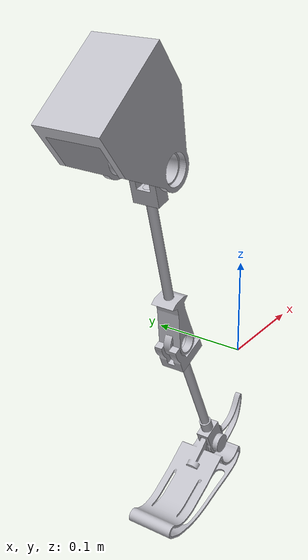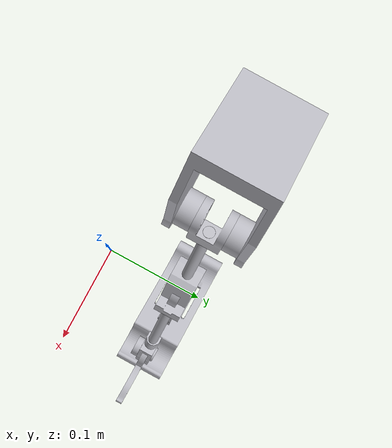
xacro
<?xml version="1.0" ?>
<robot name="09.06.26_5pm" xmlns:xacro="http://www.ros.org/wiki/xacro">

<xacro:include filename="./materials.xacro" />
<xacro:include filename="./09.06.26_5pm.trans" />
<xacro:include filename="./09.06.26_5pm.gazebo" />
<link name="base_link">
  <inertial>
    <origin xyz="-0.10238687658247528 0.07899999999999985 0.2672490830517451" rpy="0 0 0"/>
    <mass value="0.6541304380247976"/>
    <inertia ixx="0.001161" iyy="0.001238" izz="0.00114" ixy="-0.0" iyz="0.0" ixz="3.8e-05"/>
  </inertial>
  <visual>
    <origin xyz="0 0 0" rpy="0 0 0"/>
    <geometry>
      <mesh filename="file:///home/krishna/bumperbot_ws/src/09.06.26_5pm_description/meshes/base_link.stl" scale="0.001 0.001 0.001"/>
    </geometry>
    <material name="silver"/>
  </visual>
  <collision>
    <origin xyz="0 0 0" rpy="0 0 0"/>
    <geometry>
      <mesh filename="file:///home/krishna/bumperbot_ws/src/09.06.26_5pm_description/meshes/base_link.stl" scale="0.001 0.001 0.001"/>
    </geometry>
  </collision>
</link>

<link name="actuator_1_v1_1">
  <inertial>
    <origin xyz="-1.1412289121354169e-07 0.007250499999999868 -3.278807773898773e-07" rpy="0 0 0"/>
    <mass value="0.025332587754889873"/>
    <inertia ixx="4e-06" iyy="6e-06" izz="4e-06" ixy="-0.0" iyz="0.0" ixz="-0.0"/>
  </inertial>
  <visual>
    <origin xyz="0.05457 -0.048912 -0.204524" rpy="0 0 0"/>
    <geometry>
      <mesh filename="file:///home/krishna/bumperbot_ws/src/09.06.26_5pm_description/meshes/actuator_1_v1_1.stl" scale="0.001 0.001 0.001"/>
    </geometry>
    <material name="silver"/>
  </visual>
  <collision>
    <origin xyz="0.05457 -0.048912 -0.204524" rpy="0 0 0"/>
    <geometry>
      <mesh filename="file:///home/krishna/bumperbot_ws/src/09.06.26_5pm_description/meshes/actuator_1_v1_1.stl" scale="0.001 0.001 0.001"/>
    </geometry>
  </collision>
</link>

<link name="actuator_2_v1_1">
  <inertial>
    <origin xyz="-1.1412289123435837e-07 -0.007249500000000034 -3.278807774176329e-07" rpy="0 0 0"/>
    <mass value="0.025332587754889873"/>
    <inertia ixx="4e-06" iyy="6e-06" izz="4e-06" ixy="-0.0" iyz="-0.0" ixz="0.0"/>
  </inertial>
  <visual>
    <origin xyz="0.05457 -0.109087 -0.204524" rpy="0 0 0"/>
    <geometry>
      <mesh filename="file:///home/krishna/bumperbot_ws/src/09.06.26_5pm_description/meshes/actuator_2_v1_1.stl" scale="0.001 0.001 0.001"/>
    </geometry>
    <material name="silver"/>
  </visual>
  <collision>
    <origin xyz="0.05457 -0.109087 -0.204524" rpy="0 0 0"/>
    <geometry>
      <mesh filename="file:///home/krishna/bumperbot_ws/src/09.06.26_5pm_description/meshes/actuator_2_v1_1.stl" scale="0.001 0.001 0.001"/>
    </geometry>
  </collision>
</link>

<link name="hip_clevis_v1_1">
  <inertial>
    <origin xyz="0.007334968870516073 -0.015587999989115475 -0.02211352849978912" rpy="0 0 0"/>
    <mass value="0.034362694114534874"/>
    <inertia ixx="1.2e-05" iyy="1e-05" izz="7e-06" ixy="-0.0" iyz="0.0" ixz="2e-06"/>
  </inertial>
  <visual>
    <origin xyz="0.05457 -0.094588 -0.204524" rpy="0 0 0"/>
    <geometry>
      <mesh filename="file:///home/krishna/bumperbot_ws/src/09.06.26_5pm_description/meshes/hip_clevis_v1_1.stl" scale="0.001 0.001 0.001"/>
    </geometry>
    <material name="silver"/>
  </visual>
  <collision>
    <origin xyz="0.05457 -0.094588 -0.204524" rpy="0 0 0"/>
    <geometry>
      <mesh filename="file:///home/krishna/bumperbot_ws/src/09.06.26_5pm_description/meshes/hip_clevis_v1_1.stl" scale="0.001 0.001 0.001"/>
    </geometry>
  </collision>
</link>

<link name="leg_1_rod_v1_1">
  <inertial>
    <origin xyz="0.042767405156213176 -8.326672684688674e-17 -0.12893123144354507" rpy="0 0 0"/>
    <mass value="0.05716103390617287"/>
    <inertia ixx="0.00015" iyy="0.000165" izz="2.1e-05" ixy="-0.0" iyz="0.0" ixz="4.8e-05"/>
  </inertial>
  <visual>
    <origin xyz="0.046353 -0.079 -0.179751" rpy="0 0 0"/>
    <geometry>
      <mesh filename="file:///home/krishna/bumperbot_ws/src/09.06.26_5pm_description/meshes/leg_1_rod_v1_1.stl" scale="0.001 0.001 0.001"/>
    </geometry>
    <material name="silver"/>
  </visual>
  <collision>
    <origin xyz="0.046353 -0.079 -0.179751" rpy="0 0 0"/>
    <geometry>
      <mesh filename="file:///home/krishna/bumperbot_ws/src/09.06.26_5pm_description/meshes/leg_1_rod_v1_1.stl" scale="0.001 0.001 0.001"/>
    </geometry>
  </collision>
</link>

<link name="knee_bearing_holder_v1_1">
  <inertial>
    <origin xyz="0.002117645657388343 0.004713000000010223 -0.01496802981633905" rpy="0 0 0"/>
    <mass value="0.052526088047730436"/>
    <inertia ixx="1e-05" iyy="1.6e-05" izz="1.3e-05" ixy="-0.0" iyz="0.0" ixz="1e-06"/>
  </inertial>
  <visual>
    <origin xyz="-0.015786 -0.074287 0.007579" rpy="0 0 0"/>
    <geometry>
      <mesh filename="file:///home/krishna/bumperbot_ws/src/09.06.26_5pm_description/meshes/knee_bearing_holder_v1_1.stl" scale="0.001 0.001 0.001"/>
    </geometry>
    <material name="silver"/>
  </visual>
  <collision>
    <origin xyz="-0.015786 -0.074287 0.007579" rpy="0 0 0"/>
    <geometry>
      <mesh filename="file:///home/krishna/bumperbot_ws/src/09.06.26_5pm_description/meshes/knee_bearing_holder_v1_1.stl" scale="0.001 0.001 0.001"/>
    </geometry>
  </collision>
</link>

<link name="leg_2_rod_v1_1">
  <inertial>
    <origin xyz="0.0259873322679865 -2.7755575615628914e-17 -0.06768226109860206" rpy="0 0 0"/>
    <mass value="0.019259830127920444"/>
    <inertia ixx="3e-05" iyy="3.4e-05" izz="5e-06" ixy="-0.0" iyz="0.0" ixz="1.1e-05"/>
  </inertial>
  <visual>
    <origin xyz="-0.023177 -0.079 0.026773" rpy="0 0 0"/>
    <geometry>
      <mesh filename="file:///home/krishna/bumperbot_ws/src/09.06.26_5pm_description/meshes/leg_2_rod_v1_1.stl" scale="0.001 0.001 0.001"/>
    </geometry>
    <material name="silver"/>
  </visual>
  <collision>
    <origin xyz="-0.023177 -0.079 0.026773" rpy="0 0 0"/>
    <geometry>
      <mesh filename="file:///home/krishna/bumperbot_ws/src/09.06.26_5pm_description/meshes/leg_2_rod_v1_1.stl" scale="0.001 0.001 0.001"/>
    </geometry>
  </collision>
</link>

<link name="ankle_bracelet_v1_1">
  <inertial>
    <origin xyz="0.005670380472938011 -6.770972671432673e-14 -0.014767385594795734" rpy="0 0 0"/>
    <mass value="0.02471712296263406"/>
    <inertia ixx="5e-06" iyy="6e-06" izz="3e-06" ixy="-0.0" iyz="0.0" ixz="1e-06"/>
  </inertial>
  <visual>
    <origin xyz="-0.075152 -0.079 0.162138" rpy="0 0 0"/>
    <geometry>
      <mesh filename="file:///home/krishna/bumperbot_ws/src/09.06.26_5pm_description/meshes/ankle_bracelet_v1_1.stl" scale="0.001 0.001 0.001"/>
    </geometry>
    <material name="silver"/>
  </visual>
  <collision>
    <origin xyz="-0.075152 -0.079 0.162138" rpy="0 0 0"/>
    <geometry>
      <mesh filename="file:///home/krishna/bumperbot_ws/src/09.06.26_5pm_description/meshes/ankle_bracelet_v1_1.stl" scale="0.001 0.001 0.001"/>
    </geometry>
  </collision>
</link>

<link name="ankle_clevis_v1_1">
  <inertial>
    <origin xyz="0.14821410874760405 -0.09772449238578708 0.005518689044686387" rpy="0 0 0"/>
    <mass value="0.02037716964359355"/>
    <inertia ixx="2e-06" iyy="1e-06" izz="2e-06" ixy="0.0" iyz="-0.0" ixz="0.0"/>
  </inertial>
  <visual>
    <origin xyz="0.062472 -0.172475 0.195237" rpy="0 0 0"/>
    <geometry>
      <mesh filename="file:///home/krishna/bumperbot_ws/src/09.06.26_5pm_description/meshes/ankle_clevis_v1_1.stl" scale="0.001 0.001 0.001"/>
    </geometry>
    <material name="silver"/>
  </visual>
  <collision>
    <origin xyz="0.062472 -0.172475 0.195237" rpy="0 0 0"/>
    <geometry>
      <mesh filename="file:///home/krishna/bumperbot_ws/src/09.06.26_5pm_description/meshes/ankle_clevis_v1_1.stl" scale="0.001 0.001 0.001"/>
    </geometry>
  </collision>
</link>

<link name="knee_bearing_v1_1">
  <inertial>
    <origin xyz="4.748916804364969e-05 -0.004711999999999994 -0.00018823234039732142" rpy="0 0 0"/>
    <mass value="0.022749323058745264"/>
    <inertia ixx="2e-06" iyy="4e-06" izz="2e-06" ixy="-0.0" iyz="0.0" ixz="-0.0"/>
  </inertial>
  <visual>
    <origin xyz="-0.015786 -0.083712 0.007579" rpy="0 0 0"/>
    <geometry>
      <mesh filename="file:///home/krishna/bumperbot_ws/src/09.06.26_5pm_description/meshes/knee_bearing_v1_1.stl" scale="0.001 0.001 0.001"/>
    </geometry>
    <material name="silver"/>
  </visual>
  <collision>
    <origin xyz="-0.015786 -0.083712 0.007579" rpy="0 0 0"/>
    <geometry>
      <mesh filename="file:///home/krishna/bumperbot_ws/src/09.06.26_5pm_description/meshes/knee_bearing_v1_1.stl" scale="0.001 0.001 0.001"/>
    </geometry>
  </collision>
</link>

<link name="ankle_bearing_v1_1">
  <inertial>
    <origin xyz="0.14821410874711993 0.22977499999999998 0.005518689044871766" rpy="0 0 0"/>
    <mass value="0.04520418311639939"/>
    <inertia ixx="5e-06" iyy="9e-06" izz="5e-06" ixy="0.0" iyz="0.0" ixz="-0.0"/>
  </inertial>
  <visual>
    <origin xyz="0.062472 0.150775 0.195237" rpy="0 0 0"/>
    <geometry>
      <mesh filename="file:///home/krishna/bumperbot_ws/src/09.06.26_5pm_description/meshes/ankle_bearing_v1_1.stl" scale="0.001 0.001 0.001"/>
    </geometry>
    <material name="silver"/>
  </visual>
  <collision>
    <origin xyz="0.062472 0.150775 0.195237" rpy="0 0 0"/>
    <geometry>
      <mesh filename="file:///home/krishna/bumperbot_ws/src/09.06.26_5pm_description/meshes/ankle_bearing_v1_1.stl" scale="0.001 0.001 0.001"/>
    </geometry>
  </collision>
</link>

<link name="leg_stack_v1_1">
  <inertial>
    <origin xyz="-0.0415776889338746 0.0036256159342244326 -0.03833863391779391" rpy="0 0 0"/>
    <mass value="0.16228632664383524"/>
    <inertia ixx="0.00015" iyy="0.000512" izz="0.00044" ixy="0.0" iyz="0.0" ixz="-0.000172"/>
  </inertial>
  <visual>
    <origin xyz="-0.085742 -0.075375 0.189718" rpy="0 0 0"/>
    <geometry>
      <mesh filename="file:///home/krishna/bumperbot_ws/src/09.06.26_5pm_description/meshes/leg_stack_v1_1.stl" scale="0.001 0.001 0.001"/>
    </geometry>
    <material name="silver"/>
  </visual>
  <collision>
    <origin xyz="-0.085742 -0.075375 0.189718" rpy="0 0 0"/>
    <geometry>
      <mesh filename="file:///home/krishna/bumperbot_ws/src/09.06.26_5pm_description/meshes/leg_stack_v1_1.stl" scale="0.001 0.001 0.001"/>
    </geometry>
  </collision>
</link>

<joint name="Rigid 11" type="fixed">
  <origin xyz="-0.05457 0.048912 0.204524" rpy="0 0 0"/>
  <parent link="base_link"/>
  <child link="actuator_1_v1_1"/>
</joint>

<joint name="Rigid 12" type="fixed">
  <origin xyz="-0.05457 0.109087 0.204524" rpy="0 0 0"/>
  <parent link="base_link"/>
  <child link="actuator_2_v1_1"/>
</joint>

<joint name="Hip" type="revolute">
  <origin xyz="0.0 -0.014499 0.0" rpy="0 0 0"/>
  <parent link="actuator_2_v1_1"/>
  <child link="hip_clevis_v1_1"/>
  <axis xyz="0.0 -1.0 -0.0"/>
  <limit upper="1.570796" lower="-0.261799" effort="100" velocity="100"/>
</joint>

<joint name="Rigid 14" type="fixed">
  <origin xyz="0.008217 -0.015588 -0.024773" rpy="0 0 0"/>
  <parent link="hip_clevis_v1_1"/>
  <child link="leg_1_rod_v1_1"/>
</joint>

<joint name="Knee" type="revolute">
  <origin xyz="0.062139 -0.004713 -0.18733" rpy="0 0 0"/>
  <parent link="leg_1_rod_v1_1"/>
  <child link="knee_bearing_holder_v1_1"/>
  <axis xyz="-0.0 1.0 -0.0"/>
  <limit upper="0.034907" lower="-0.523599" effort="100" velocity="100"/>
</joint>

<joint name="Rigid 17" type="fixed">
  <origin xyz="0.007391 0.004713 -0.019194" rpy="0 0 0"/>
  <parent link="knee_bearing_holder_v1_1"/>
  <child link="leg_2_rod_v1_1"/>
</joint>

<joint name="Rigid 18" type="fixed">
  <origin xyz="0.051975 0.0 -0.135365" rpy="0 0 0"/>
  <parent link="leg_2_rod_v1_1"/>
  <child link="ankle_bracelet_v1_1"/>
</joint>

<joint name="Rigid 21" type="fixed">
  <origin xyz="-0.137624 0.093475 -0.033099" rpy="0 0 0"/>
  <parent link="ankle_bracelet_v1_1"/>
  <child link="ankle_clevis_v1_1"/>
</joint>

<joint name="Rigid 22" type="fixed">
  <origin xyz="0.0 0.009425 0.0" rpy="0 0 0"/>
  <parent link="knee_bearing_holder_v1_1"/>
  <child link="knee_bearing_v1_1"/>
</joint>

<joint name="Rigid 23" type="fixed">
  <origin xyz="0.0 -0.32325 0.0" rpy="0 0 0"/>
  <parent link="ankle_clevis_v1_1"/>
  <child link="ankle_bearing_v1_1"/>
</joint>

<joint name="Ankle" type="revolute">
  <origin xyz="0.148214 0.22615 0.005519" rpy="0 0 0"/>
  <parent link="ankle_bearing_v1_1"/>
  <child link="leg_stack_v1_1"/>
  <axis xyz="-0.0 1.0 -0.0"/>
  <limit upper="0.261799" lower="-1.134464" effort="100" velocity="100"/>
</joint>

</robot>
